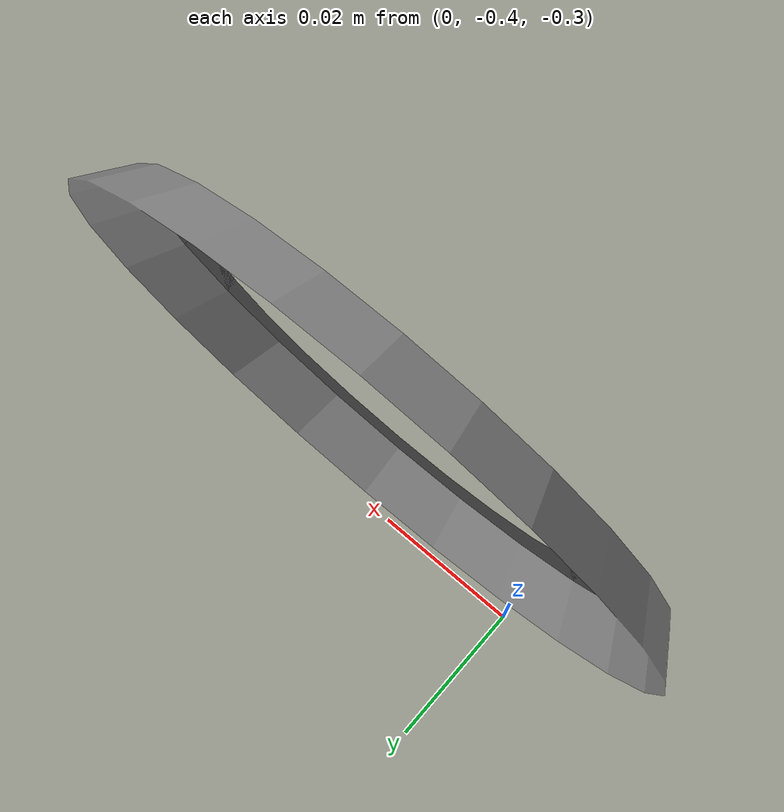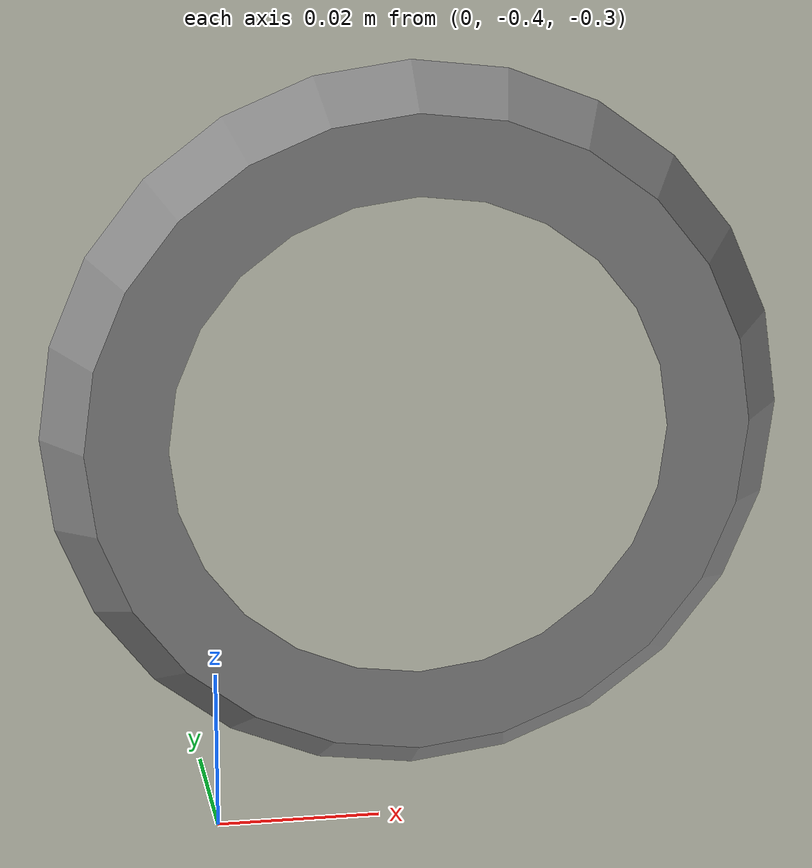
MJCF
<mujoco model="original-79">
  <default>
    <default class="visual">
      <geom group="2" type="mesh" contype="0" conaffinity="0"/>
    </default>
    <default class="collision">
      <geom group="3" type="mesh"/>
    </default>
  </default>
  <asset>
    <material name="material_0_0" specular="0.06666666666666667" shininess="0.03" rgba="0.8 0.8 0.8 1"/>
    <material name="material_1_0" specular="0.06666666666666667" shininess="0.03" rgba="0.5294117647058824 0.5294117647058824 0.5294117647058824 1"/>
    <mesh file="original-79_0.obj"/>
    <mesh file="original-79_1.obj"/>
  </asset>
  <worldbody>
    <body name="original-79">
      <geom mesh="original-79_0" material="material_1_0" class="visual"/>
      <geom mesh="original-79_1" material="material_0_0" class="visual"/>
      <geom mesh="original-79_0" class="collision"/>
      <geom mesh="original-79_1" class="collision"/>
    </body>
  </worldbody>
</mujoco>
